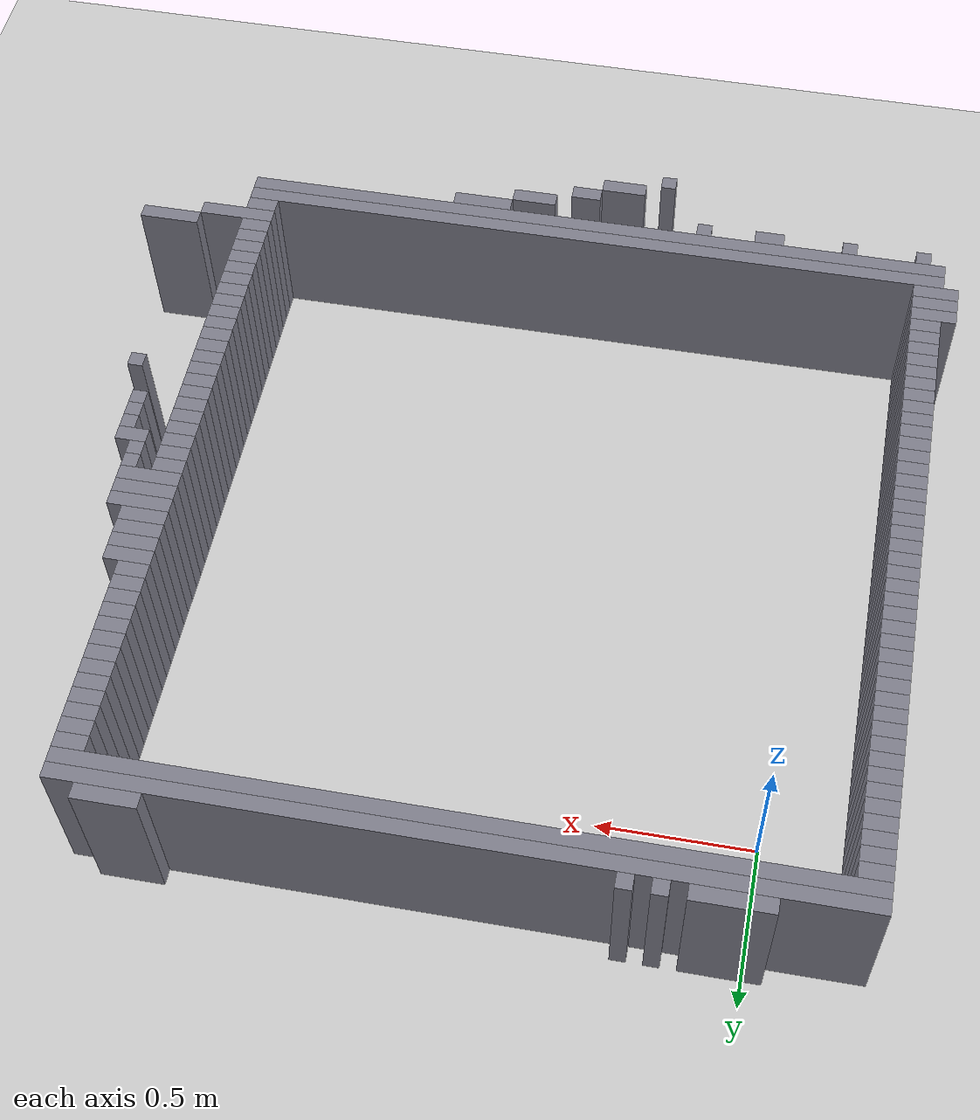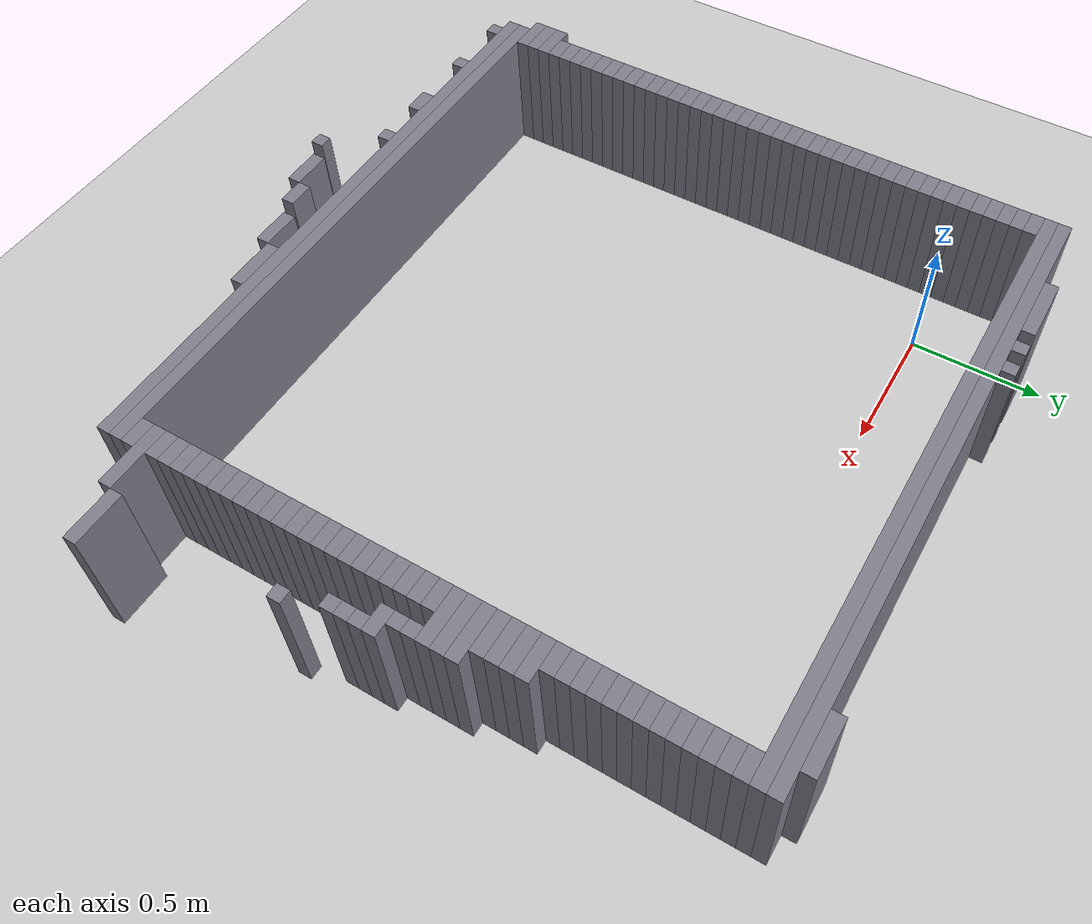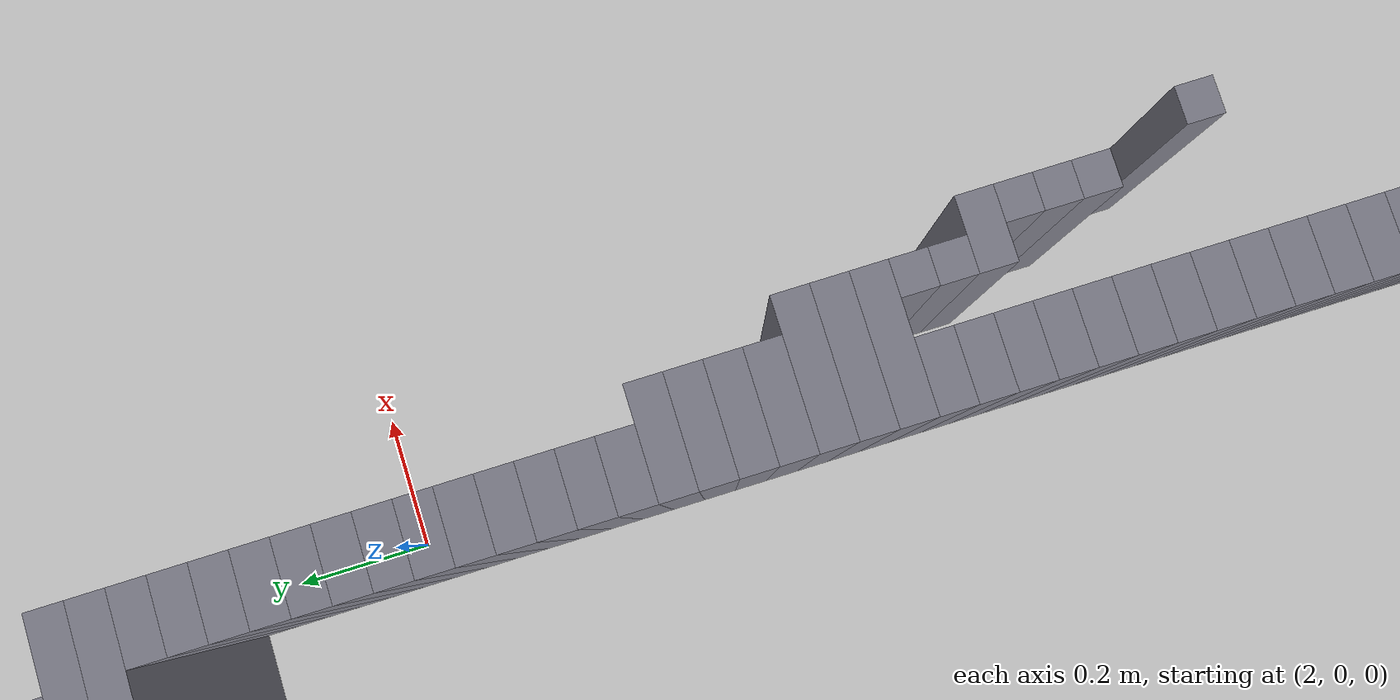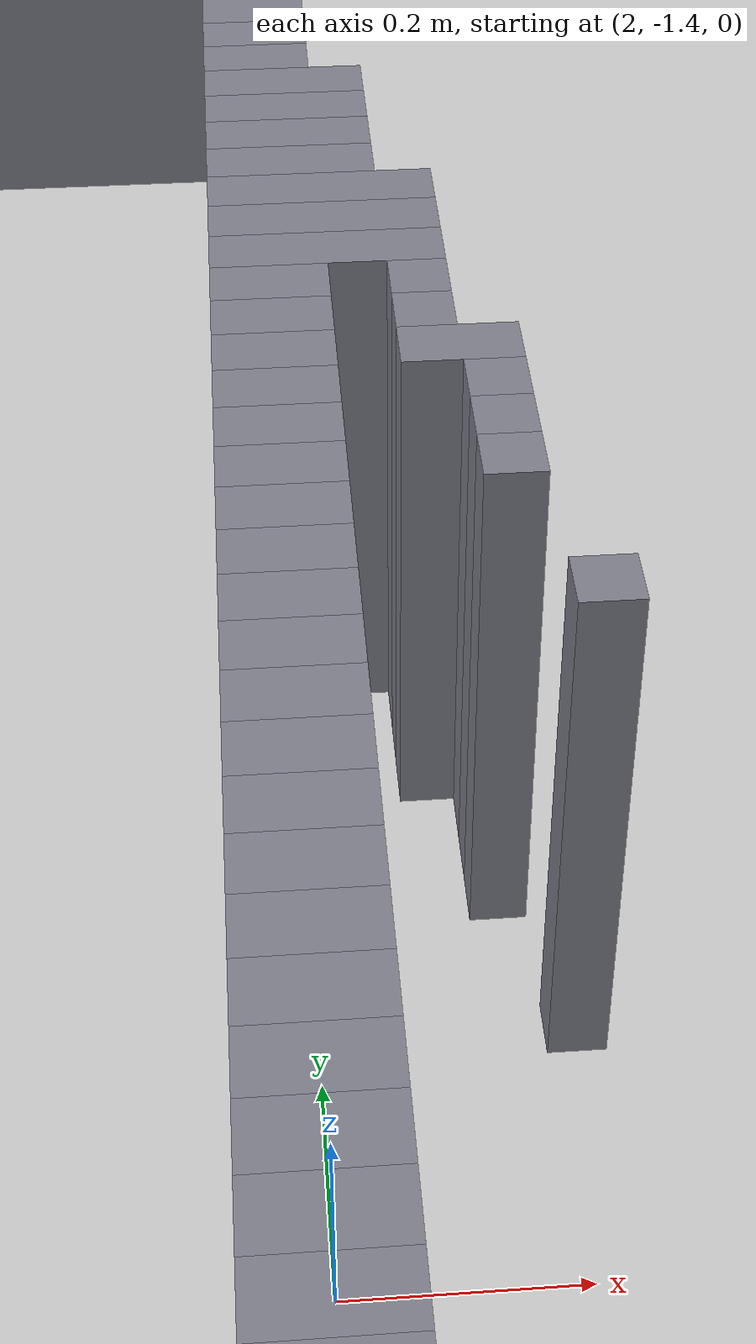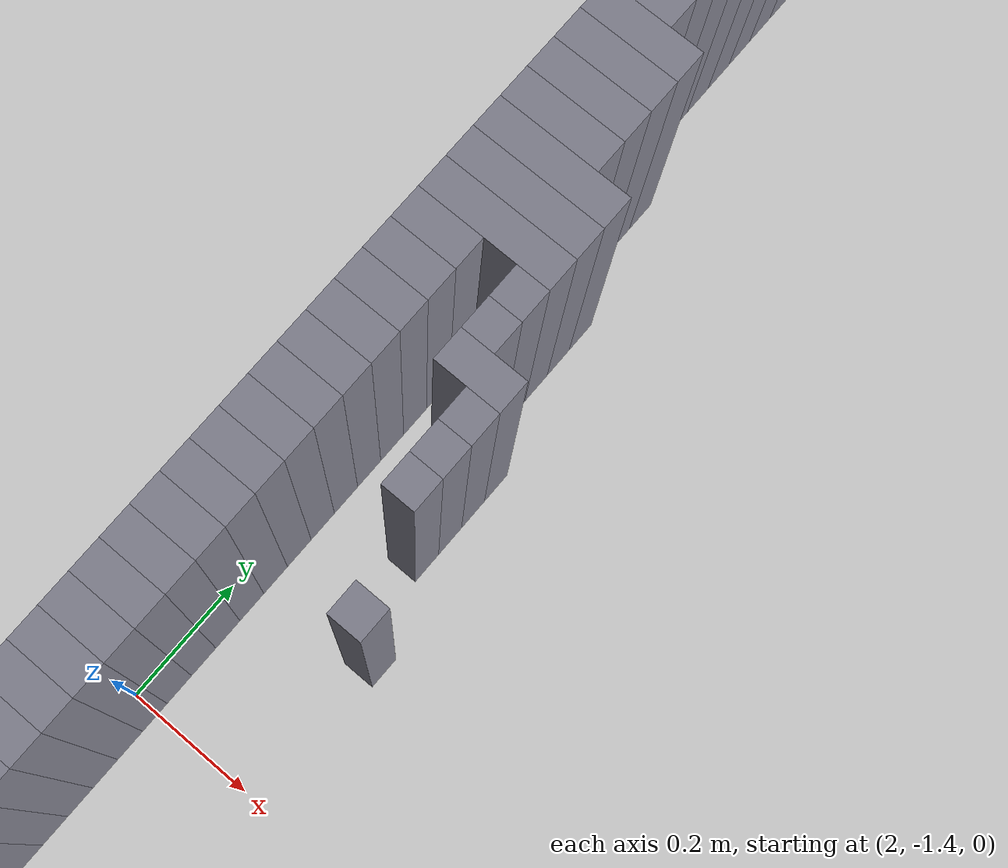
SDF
<?xml version="1.0"?>
<!-- Auto-generated from map.pgm by tools/map2world.py. Walls match the
     ROS map so Gazebo geometry == the map AMCL localizes against. -->
<sdf version="1.6">
  <world name="dart_room">
    <include><uri>model://ground_plane</uri></include>
    <include><uri>model://sun</uri></include>
    <physics type="ode">
      <max_step_size>0.001</max_step_size>
      <real_time_update_rate>1000</real_time_update_rate>
    </physics>
    <scene><ambient>0.4 0.4 0.4 1</ambient><background>0.7 0.7 0.7 1</background><shadows>false</shadows></scene>
    <model name="wall_0">
      <static>true</static>
      <pose>0.065 0.395 0.250 0 0 0</pose>
      <link name="link">
        <collision name="c"><geometry><box><size>0.250 0.050 0.500</size></box></geometry></collision>
        <visual name="v"><geometry><box><size>0.250 0.050 0.500</size></box></geometry>
          <material><ambient>0.5 0.5 0.55 1</ambient><diffuse>0.5 0.5 0.55 1</diffuse></material></visual>
      </link>
    </model>
    <model name="wall_1">
      <static>true</static>
      <pose>0.265 0.395 0.250 0 0 0</pose>
      <link name="link">
        <collision name="c"><geometry><box><size>0.050 0.050 0.500</size></box></geometry></collision>
        <visual name="v"><geometry><box><size>0.050 0.050 0.500</size></box></geometry>
          <material><ambient>0.5 0.5 0.55 1</ambient><diffuse>0.5 0.5 0.55 1</diffuse></material></visual>
      </link>
    </model>
    <model name="wall_2">
      <static>true</static>
      <pose>0.365 0.395 0.250 0 0 0</pose>
      <link name="link">
        <collision name="c"><geometry><box><size>0.050 0.050 0.500</size></box></geometry></collision>
        <visual name="v"><geometry><box><size>0.050 0.050 0.500</size></box></geometry>
          <material><ambient>0.5 0.5 0.55 1</ambient><diffuse>0.5 0.5 0.55 1</diffuse></material></visual>
      </link>
    </model>
    <model name="wall_3">
      <static>true</static>
      <pose>1.840 0.395 0.250 0 0 0</pose>
      <link name="link">
        <collision name="c"><geometry><box><size>0.200 0.050 0.500</size></box></geometry></collision>
        <visual name="v"><geometry><box><size>0.200 0.050 0.500</size></box></geometry>
          <material><ambient>0.5 0.5 0.55 1</ambient><diffuse>0.5 0.5 0.55 1</diffuse></material></visual>
      </link>
    </model>
    <model name="wall_4">
      <static>true</static>
      <pose>0.840 0.345 0.250 0 0 0</pose>
      <link name="link">
        <collision name="c"><geometry><box><size>2.400 0.050 0.500</size></box></geometry></collision>
        <visual name="v"><geometry><box><size>2.400 0.050 0.500</size></box></geometry>
          <material><ambient>0.5 0.5 0.55 1</ambient><diffuse>0.5 0.5 0.55 1</diffuse></material></visual>
      </link>
    </model>
    <model name="wall_5">
      <static>true</static>
      <pose>0.840 0.295 0.250 0 0 0</pose>
      <link name="link">
        <collision name="c"><geometry><box><size>2.400 0.050 0.500</size></box></geometry></collision>
        <visual name="v"><geometry><box><size>2.400 0.050 0.500</size></box></geometry>
          <material><ambient>0.5 0.5 0.55 1</ambient><diffuse>0.5 0.5 0.55 1</diffuse></material></visual>
      </link>
    </model>
    <model name="wall_6">
      <static>true</static>
      <pose>-0.310 0.245 0.250 0 0 0</pose>
      <link name="link">
        <collision name="c"><geometry><box><size>0.100 0.050 0.500</size></box></geometry></collision>
        <visual name="v"><geometry><box><size>0.100 0.050 0.500</size></box></geometry>
          <material><ambient>0.5 0.5 0.55 1</ambient><diffuse>0.5 0.5 0.55 1</diffuse></material></visual>
      </link>
    </model>
    <model name="wall_7">
      <static>true</static>
      <pose>1.990 0.245 0.250 0 0 0</pose>
      <link name="link">
        <collision name="c"><geometry><box><size>0.100 0.050 0.500</size></box></geometry></collision>
        <visual name="v"><geometry><box><size>0.100 0.050 0.500</size></box></geometry>
          <material><ambient>0.5 0.5 0.55 1</ambient><diffuse>0.5 0.5 0.55 1</diffuse></material></visual>
      </link>
    </model>
    <model name="wall_8">
      <static>true</static>
      <pose>-0.310 0.195 0.250 0 0 0</pose>
      <link name="link">
        <collision name="c"><geometry><box><size>0.100 0.050 0.500</size></box></geometry></collision>
        <visual name="v"><geometry><box><size>0.100 0.050 0.500</size></box></geometry>
          <material><ambient>0.5 0.5 0.55 1</ambient><diffuse>0.5 0.5 0.55 1</diffuse></material></visual>
      </link>
    </model>
    <model name="wall_9">
      <static>true</static>
      <pose>1.990 0.195 0.250 0 0 0</pose>
      <link name="link">
        <collision name="c"><geometry><box><size>0.100 0.050 0.500</size></box></geometry></collision>
        <visual name="v"><geometry><box><size>0.100 0.050 0.500</size></box></geometry>
          <material><ambient>0.5 0.5 0.55 1</ambient><diffuse>0.5 0.5 0.55 1</diffuse></material></visual>
      </link>
    </model>
    <model name="wall_10">
      <static>true</static>
      <pose>-0.310 0.145 0.250 0 0 0</pose>
      <link name="link">
        <collision name="c"><geometry><box><size>0.100 0.050 0.500</size></box></geometry></collision>
        <visual name="v"><geometry><box><size>0.100 0.050 0.500</size></box></geometry>
          <material><ambient>0.5 0.5 0.55 1</ambient><diffuse>0.5 0.5 0.55 1</diffuse></material></visual>
      </link>
    </model>
    <model name="wall_11">
      <static>true</static>
      <pose>1.990 0.145 0.250 0 0 0</pose>
      <link name="link">
        <collision name="c"><geometry><box><size>0.100 0.050 0.500</size></box></geometry></collision>
        <visual name="v"><geometry><box><size>0.100 0.050 0.500</size></box></geometry>
          <material><ambient>0.5 0.5 0.55 1</ambient><diffuse>0.5 0.5 0.55 1</diffuse></material></visual>
      </link>
    </model>
    <model name="wall_12">
      <static>true</static>
      <pose>-0.310 0.095 0.250 0 0 0</pose>
      <link name="link">
        <collision name="c"><geometry><box><size>0.100 0.050 0.500</size></box></geometry></collision>
        <visual name="v"><geometry><box><size>0.100 0.050 0.500</size></box></geometry>
          <material><ambient>0.5 0.5 0.55 1</ambient><diffuse>0.5 0.5 0.55 1</diffuse></material></visual>
      </link>
    </model>
    <model name="wall_13">
      <static>true</static>
      <pose>1.990 0.095 0.250 0 0 0</pose>
      <link name="link">
        <collision name="c"><geometry><box><size>0.100 0.050 0.500</size></box></geometry></collision>
        <visual name="v"><geometry><box><size>0.100 0.050 0.500</size></box></geometry>
          <material><ambient>0.5 0.5 0.55 1</ambient><diffuse>0.5 0.5 0.55 1</diffuse></material></visual>
      </link>
    </model>
    <model name="wall_14">
      <static>true</static>
      <pose>-0.310 0.045 0.250 0 0 0</pose>
      <link name="link">
        <collision name="c"><geometry><box><size>0.100 0.050 0.500</size></box></geometry></collision>
        <visual name="v"><geometry><box><size>0.100 0.050 0.500</size></box></geometry>
          <material><ambient>0.5 0.5 0.55 1</ambient><diffuse>0.5 0.5 0.55 1</diffuse></material></visual>
      </link>
    </model>
    <model name="wall_15">
      <static>true</static>
      <pose>1.990 0.045 0.250 0 0 0</pose>
      <link name="link">
        <collision name="c"><geometry><box><size>0.100 0.050 0.500</size></box></geometry></collision>
        <visual name="v"><geometry><box><size>0.100 0.050 0.500</size></box></geometry>
          <material><ambient>0.5 0.5 0.55 1</ambient><diffuse>0.5 0.5 0.55 1</diffuse></material></visual>
      </link>
    </model>
    <model name="wall_16">
      <static>true</static>
      <pose>-0.310 -0.005 0.250 0 0 0</pose>
      <link name="link">
        <collision name="c"><geometry><box><size>0.100 0.050 0.500</size></box></geometry></collision>
        <visual name="v"><geometry><box><size>0.100 0.050 0.500</size></box></geometry>
          <material><ambient>0.5 0.5 0.55 1</ambient><diffuse>0.5 0.5 0.55 1</diffuse></material></visual>
      </link>
    </model>
    <model name="wall_17">
      <static>true</static>
      <pose>1.990 -0.005 0.250 0 0 0</pose>
      <link name="link">
        <collision name="c"><geometry><box><size>0.100 0.050 0.500</size></box></geometry></collision>
        <visual name="v"><geometry><box><size>0.100 0.050 0.500</size></box></geometry>
          <material><ambient>0.5 0.5 0.55 1</ambient><diffuse>0.5 0.5 0.55 1</diffuse></material></visual>
      </link>
    </model>
    <model name="wall_18">
      <static>true</static>
      <pose>-0.310 -0.055 0.250 0 0 0</pose>
      <link name="link">
        <collision name="c"><geometry><box><size>0.100 0.050 0.500</size></box></geometry></collision>
        <visual name="v"><geometry><box><size>0.100 0.050 0.500</size></box></geometry>
          <material><ambient>0.5 0.5 0.55 1</ambient><diffuse>0.5 0.5 0.55 1</diffuse></material></visual>
      </link>
    </model>
    <model name="wall_19">
      <static>true</static>
      <pose>1.990 -0.055 0.250 0 0 0</pose>
      <link name="link">
        <collision name="c"><geometry><box><size>0.100 0.050 0.500</size></box></geometry></collision>
        <visual name="v"><geometry><box><size>0.100 0.050 0.500</size></box></geometry>
          <material><ambient>0.5 0.5 0.55 1</ambient><diffuse>0.5 0.5 0.55 1</diffuse></material></visual>
      </link>
    </model>
    <model name="wall_20">
      <static>true</static>
      <pose>-0.310 -0.105 0.250 0 0 0</pose>
      <link name="link">
        <collision name="c"><geometry><box><size>0.100 0.050 0.500</size></box></geometry></collision>
        <visual name="v"><geometry><box><size>0.100 0.050 0.500</size></box></geometry>
          <material><ambient>0.5 0.5 0.55 1</ambient><diffuse>0.5 0.5 0.55 1</diffuse></material></visual>
      </link>
    </model>
    <model name="wall_21">
      <static>true</static>
      <pose>1.990 -0.105 0.250 0 0 0</pose>
      <link name="link">
        <collision name="c"><geometry><box><size>0.100 0.050 0.500</size></box></geometry></collision>
        <visual name="v"><geometry><box><size>0.100 0.050 0.500</size></box></geometry>
          <material><ambient>0.5 0.5 0.55 1</ambient><diffuse>0.5 0.5 0.55 1</diffuse></material></visual>
      </link>
    </model>
    <model name="wall_22">
      <static>true</static>
      <pose>-0.310 -0.155 0.250 0 0 0</pose>
      <link name="link">
        <collision name="c"><geometry><box><size>0.100 0.050 0.500</size></box></geometry></collision>
        <visual name="v"><geometry><box><size>0.100 0.050 0.500</size></box></geometry>
          <material><ambient>0.5 0.5 0.55 1</ambient><diffuse>0.5 0.5 0.55 1</diffuse></material></visual>
      </link>
    </model>
    <model name="wall_23">
      <static>true</static>
      <pose>1.990 -0.155 0.250 0 0 0</pose>
      <link name="link">
        <collision name="c"><geometry><box><size>0.100 0.050 0.500</size></box></geometry></collision>
        <visual name="v"><geometry><box><size>0.100 0.050 0.500</size></box></geometry>
          <material><ambient>0.5 0.5 0.55 1</ambient><diffuse>0.5 0.5 0.55 1</diffuse></material></visual>
      </link>
    </model>
    <model name="wall_24">
      <static>true</static>
      <pose>-0.310 -0.205 0.250 0 0 0</pose>
      <link name="link">
        <collision name="c"><geometry><box><size>0.100 0.050 0.500</size></box></geometry></collision>
        <visual name="v"><geometry><box><size>0.100 0.050 0.500</size></box></geometry>
          <material><ambient>0.5 0.5 0.55 1</ambient><diffuse>0.5 0.5 0.55 1</diffuse></material></visual>
      </link>
    </model>
    <model name="wall_25">
      <static>true</static>
      <pose>1.990 -0.205 0.250 0 0 0</pose>
      <link name="link">
        <collision name="c"><geometry><box><size>0.100 0.050 0.500</size></box></geometry></collision>
        <visual name="v"><geometry><box><size>0.100 0.050 0.500</size></box></geometry>
          <material><ambient>0.5 0.5 0.55 1</ambient><diffuse>0.5 0.5 0.55 1</diffuse></material></visual>
      </link>
    </model>
    <model name="wall_26">
      <static>true</static>
      <pose>-0.310 -0.255 0.250 0 0 0</pose>
      <link name="link">
        <collision name="c"><geometry><box><size>0.100 0.050 0.500</size></box></geometry></collision>
        <visual name="v"><geometry><box><size>0.100 0.050 0.500</size></box></geometry>
          <material><ambient>0.5 0.5 0.55 1</ambient><diffuse>0.5 0.5 0.55 1</diffuse></material></visual>
      </link>
    </model>
    <model name="wall_27">
      <static>true</static>
      <pose>1.990 -0.255 0.250 0 0 0</pose>
      <link name="link">
        <collision name="c"><geometry><box><size>0.100 0.050 0.500</size></box></geometry></collision>
        <visual name="v"><geometry><box><size>0.100 0.050 0.500</size></box></geometry>
          <material><ambient>0.5 0.5 0.55 1</ambient><diffuse>0.5 0.5 0.55 1</diffuse></material></visual>
      </link>
    </model>
    <model name="wall_28">
      <static>true</static>
      <pose>-0.310 -0.305 0.250 0 0 0</pose>
      <link name="link">
        <collision name="c"><geometry><box><size>0.100 0.050 0.500</size></box></geometry></collision>
        <visual name="v"><geometry><box><size>0.100 0.050 0.500</size></box></geometry>
          <material><ambient>0.5 0.5 0.55 1</ambient><diffuse>0.5 0.5 0.55 1</diffuse></material></visual>
      </link>
    </model>
    <model name="wall_29">
      <static>true</static>
      <pose>1.990 -0.305 0.250 0 0 0</pose>
      <link name="link">
        <collision name="c"><geometry><box><size>0.100 0.050 0.500</size></box></geometry></collision>
        <visual name="v"><geometry><box><size>0.100 0.050 0.500</size></box></geometry>
          <material><ambient>0.5 0.5 0.55 1</ambient><diffuse>0.5 0.5 0.55 1</diffuse></material></visual>
      </link>
    </model>
    <model name="wall_30">
      <static>true</static>
      <pose>-0.310 -0.355 0.250 0 0 0</pose>
      <link name="link">
        <collision name="c"><geometry><box><size>0.100 0.050 0.500</size></box></geometry></collision>
        <visual name="v"><geometry><box><size>0.100 0.050 0.500</size></box></geometry>
          <material><ambient>0.5 0.5 0.55 1</ambient><diffuse>0.5 0.5 0.55 1</diffuse></material></visual>
      </link>
    </model>
    <model name="wall_31">
      <static>true</static>
      <pose>1.990 -0.355 0.250 0 0 0</pose>
      <link name="link">
        <collision name="c"><geometry><box><size>0.100 0.050 0.500</size></box></geometry></collision>
        <visual name="v"><geometry><box><size>0.100 0.050 0.500</size></box></geometry>
          <material><ambient>0.5 0.5 0.55 1</ambient><diffuse>0.5 0.5 0.55 1</diffuse></material></visual>
      </link>
    </model>
    <model name="wall_32">
      <static>true</static>
      <pose>-0.310 -0.405 0.250 0 0 0</pose>
      <link name="link">
        <collision name="c"><geometry><box><size>0.100 0.050 0.500</size></box></geometry></collision>
        <visual name="v"><geometry><box><size>0.100 0.050 0.500</size></box></geometry>
          <material><ambient>0.5 0.5 0.55 1</ambient><diffuse>0.5 0.5 0.55 1</diffuse></material></visual>
      </link>
    </model>
    <model name="wall_33">
      <static>true</static>
      <pose>2.015 -0.405 0.250 0 0 0</pose>
      <link name="link">
        <collision name="c"><geometry><box><size>0.150 0.050 0.500</size></box></geometry></collision>
        <visual name="v"><geometry><box><size>0.150 0.050 0.500</size></box></geometry>
          <material><ambient>0.5 0.5 0.55 1</ambient><diffuse>0.5 0.5 0.55 1</diffuse></material></visual>
      </link>
    </model>
    <model name="wall_34">
      <static>true</static>
      <pose>-0.310 -0.455 0.250 0 0 0</pose>
      <link name="link">
        <collision name="c"><geometry><box><size>0.100 0.050 0.500</size></box></geometry></collision>
        <visual name="v"><geometry><box><size>0.100 0.050 0.500</size></box></geometry>
          <material><ambient>0.5 0.5 0.55 1</ambient><diffuse>0.5 0.5 0.55 1</diffuse></material></visual>
      </link>
    </model>
    <model name="wall_35">
      <static>true</static>
      <pose>2.015 -0.455 0.250 0 0 0</pose>
      <link name="link">
        <collision name="c"><geometry><box><size>0.150 0.050 0.500</size></box></geometry></collision>
        <visual name="v"><geometry><box><size>0.150 0.050 0.500</size></box></geometry>
          <material><ambient>0.5 0.5 0.55 1</ambient><diffuse>0.5 0.5 0.55 1</diffuse></material></visual>
      </link>
    </model>
    <model name="wall_36">
      <static>true</static>
      <pose>-0.310 -0.505 0.250 0 0 0</pose>
      <link name="link">
        <collision name="c"><geometry><box><size>0.100 0.050 0.500</size></box></geometry></collision>
        <visual name="v"><geometry><box><size>0.100 0.050 0.500</size></box></geometry>
          <material><ambient>0.5 0.5 0.55 1</ambient><diffuse>0.5 0.5 0.55 1</diffuse></material></visual>
      </link>
    </model>
    <model name="wall_37">
      <static>true</static>
      <pose>2.015 -0.505 0.250 0 0 0</pose>
      <link name="link">
        <collision name="c"><geometry><box><size>0.150 0.050 0.500</size></box></geometry></collision>
        <visual name="v"><geometry><box><size>0.150 0.050 0.500</size></box></geometry>
          <material><ambient>0.5 0.5 0.55 1</ambient><diffuse>0.5 0.5 0.55 1</diffuse></material></visual>
      </link>
    </model>
    <model name="wall_38">
      <static>true</static>
      <pose>-0.310 -0.555 0.250 0 0 0</pose>
      <link name="link">
        <collision name="c"><geometry><box><size>0.100 0.050 0.500</size></box></geometry></collision>
        <visual name="v"><geometry><box><size>0.100 0.050 0.500</size></box></geometry>
          <material><ambient>0.5 0.5 0.55 1</ambient><diffuse>0.5 0.5 0.55 1</diffuse></material></visual>
      </link>
    </model>
    <model name="wall_39">
      <static>true</static>
      <pose>2.015 -0.555 0.250 0 0 0</pose>
      <link name="link">
        <collision name="c"><geometry><box><size>0.150 0.050 0.500</size></box></geometry></collision>
        <visual name="v"><geometry><box><size>0.150 0.050 0.500</size></box></geometry>
          <material><ambient>0.5 0.5 0.55 1</ambient><diffuse>0.5 0.5 0.55 1</diffuse></material></visual>
      </link>
    </model>
    <model name="wall_40">
      <static>true</static>
      <pose>-0.310 -0.605 0.250 0 0 0</pose>
      <link name="link">
        <collision name="c"><geometry><box><size>0.100 0.050 0.500</size></box></geometry></collision>
        <visual name="v"><geometry><box><size>0.100 0.050 0.500</size></box></geometry>
          <material><ambient>0.5 0.5 0.55 1</ambient><diffuse>0.5 0.5 0.55 1</diffuse></material></visual>
      </link>
    </model>
    <model name="wall_41">
      <static>true</static>
      <pose>2.040 -0.605 0.250 0 0 0</pose>
      <link name="link">
        <collision name="c"><geometry><box><size>0.200 0.050 0.500</size></box></geometry></collision>
        <visual name="v"><geometry><box><size>0.200 0.050 0.500</size></box></geometry>
          <material><ambient>0.5 0.5 0.55 1</ambient><diffuse>0.5 0.5 0.55 1</diffuse></material></visual>
      </link>
    </model>
    <model name="wall_42">
      <static>true</static>
      <pose>-0.310 -0.655 0.250 0 0 0</pose>
      <link name="link">
        <collision name="c"><geometry><box><size>0.100 0.050 0.500</size></box></geometry></collision>
        <visual name="v"><geometry><box><size>0.100 0.050 0.500</size></box></geometry>
          <material><ambient>0.5 0.5 0.55 1</ambient><diffuse>0.5 0.5 0.55 1</diffuse></material></visual>
      </link>
    </model>
    <model name="wall_43">
      <static>true</static>
      <pose>2.040 -0.655 0.250 0 0 0</pose>
      <link name="link">
        <collision name="c"><geometry><box><size>0.200 0.050 0.500</size></box></geometry></collision>
        <visual name="v"><geometry><box><size>0.200 0.050 0.500</size></box></geometry>
          <material><ambient>0.5 0.5 0.55 1</ambient><diffuse>0.5 0.5 0.55 1</diffuse></material></visual>
      </link>
    </model>
    <model name="wall_44">
      <static>true</static>
      <pose>-0.310 -0.705 0.250 0 0 0</pose>
      <link name="link">
        <collision name="c"><geometry><box><size>0.100 0.050 0.500</size></box></geometry></collision>
        <visual name="v"><geometry><box><size>0.100 0.050 0.500</size></box></geometry>
          <material><ambient>0.5 0.5 0.55 1</ambient><diffuse>0.5 0.5 0.55 1</diffuse></material></visual>
      </link>
    </model>
    <model name="wall_45">
      <static>true</static>
      <pose>2.040 -0.705 0.250 0 0 0</pose>
      <link name="link">
        <collision name="c"><geometry><box><size>0.200 0.050 0.500</size></box></geometry></collision>
        <visual name="v"><geometry><box><size>0.200 0.050 0.500</size></box></geometry>
          <material><ambient>0.5 0.5 0.55 1</ambient><diffuse>0.5 0.5 0.55 1</diffuse></material></visual>
      </link>
    </model>
    <model name="wall_46">
      <static>true</static>
      <pose>-0.310 -0.755 0.250 0 0 0</pose>
      <link name="link">
        <collision name="c"><geometry><box><size>0.100 0.050 0.500</size></box></geometry></collision>
        <visual name="v"><geometry><box><size>0.100 0.050 0.500</size></box></geometry>
          <material><ambient>0.5 0.5 0.55 1</ambient><diffuse>0.5 0.5 0.55 1</diffuse></material></visual>
      </link>
    </model>
    <model name="wall_47">
      <static>true</static>
      <pose>1.990 -0.755 0.250 0 0 0</pose>
      <link name="link">
        <collision name="c"><geometry><box><size>0.100 0.050 0.500</size></box></geometry></collision>
        <visual name="v"><geometry><box><size>0.100 0.050 0.500</size></box></geometry>
          <material><ambient>0.5 0.5 0.55 1</ambient><diffuse>0.5 0.5 0.55 1</diffuse></material></visual>
      </link>
    </model>
    <model name="wall_48">
      <static>true</static>
      <pose>2.115 -0.755 0.250 0 0 0</pose>
      <link name="link">
        <collision name="c"><geometry><box><size>0.050 0.050 0.500</size></box></geometry></collision>
        <visual name="v"><geometry><box><size>0.050 0.050 0.500</size></box></geometry>
          <material><ambient>0.5 0.5 0.55 1</ambient><diffuse>0.5 0.5 0.55 1</diffuse></material></visual>
      </link>
    </model>
    <model name="wall_49">
      <static>true</static>
      <pose>-0.310 -0.805 0.250 0 0 0</pose>
      <link name="link">
        <collision name="c"><geometry><box><size>0.100 0.050 0.500</size></box></geometry></collision>
        <visual name="v"><geometry><box><size>0.100 0.050 0.500</size></box></geometry>
          <material><ambient>0.5 0.5 0.55 1</ambient><diffuse>0.5 0.5 0.55 1</diffuse></material></visual>
      </link>
    </model>
    <model name="wall_50">
      <static>true</static>
      <pose>1.990 -0.805 0.250 0 0 0</pose>
      <link name="link">
        <collision name="c"><geometry><box><size>0.100 0.050 0.500</size></box></geometry></collision>
        <visual name="v"><geometry><box><size>0.100 0.050 0.500</size></box></geometry>
          <material><ambient>0.5 0.5 0.55 1</ambient><diffuse>0.5 0.5 0.55 1</diffuse></material></visual>
      </link>
    </model>
    <model name="wall_51">
      <static>true</static>
      <pose>2.115 -0.805 0.250 0 0 0</pose>
      <link name="link">
        <collision name="c"><geometry><box><size>0.050 0.050 0.500</size></box></geometry></collision>
        <visual name="v"><geometry><box><size>0.050 0.050 0.500</size></box></geometry>
          <material><ambient>0.5 0.5 0.55 1</ambient><diffuse>0.5 0.5 0.55 1</diffuse></material></visual>
      </link>
    </model>
    <model name="wall_52">
      <static>true</static>
      <pose>-0.310 -0.855 0.250 0 0 0</pose>
      <link name="link">
        <collision name="c"><geometry><box><size>0.100 0.050 0.500</size></box></geometry></collision>
        <visual name="v"><geometry><box><size>0.100 0.050 0.500</size></box></geometry>
          <material><ambient>0.5 0.5 0.55 1</ambient><diffuse>0.5 0.5 0.55 1</diffuse></material></visual>
      </link>
    </model>
    <model name="wall_53">
      <static>true</static>
      <pose>1.990 -0.855 0.250 0 0 0</pose>
      <link name="link">
        <collision name="c"><geometry><box><size>0.100 0.050 0.500</size></box></geometry></collision>
        <visual name="v"><geometry><box><size>0.100 0.050 0.500</size></box></geometry>
          <material><ambient>0.5 0.5 0.55 1</ambient><diffuse>0.5 0.5 0.55 1</diffuse></material></visual>
      </link>
    </model>
    <model name="wall_54">
      <static>true</static>
      <pose>2.140 -0.855 0.250 0 0 0</pose>
      <link name="link">
        <collision name="c"><geometry><box><size>0.100 0.050 0.500</size></box></geometry></collision>
        <visual name="v"><geometry><box><size>0.100 0.050 0.500</size></box></geometry>
          <material><ambient>0.5 0.5 0.55 1</ambient><diffuse>0.5 0.5 0.55 1</diffuse></material></visual>
      </link>
    </model>
    <model name="wall_55">
      <static>true</static>
      <pose>-0.310 -0.905 0.250 0 0 0</pose>
      <link name="link">
        <collision name="c"><geometry><box><size>0.100 0.050 0.500</size></box></geometry></collision>
        <visual name="v"><geometry><box><size>0.100 0.050 0.500</size></box></geometry>
          <material><ambient>0.5 0.5 0.55 1</ambient><diffuse>0.5 0.5 0.55 1</diffuse></material></visual>
      </link>
    </model>
    <model name="wall_56">
      <static>true</static>
      <pose>1.990 -0.905 0.250 0 0 0</pose>
      <link name="link">
        <collision name="c"><geometry><box><size>0.100 0.050 0.500</size></box></geometry></collision>
        <visual name="v"><geometry><box><size>0.100 0.050 0.500</size></box></geometry>
          <material><ambient>0.5 0.5 0.55 1</ambient><diffuse>0.5 0.5 0.55 1</diffuse></material></visual>
      </link>
    </model>
    <model name="wall_57">
      <static>true</static>
      <pose>2.165 -0.905 0.250 0 0 0</pose>
      <link name="link">
        <collision name="c"><geometry><box><size>0.050 0.050 0.500</size></box></geometry></collision>
        <visual name="v"><geometry><box><size>0.050 0.050 0.500</size></box></geometry>
          <material><ambient>0.5 0.5 0.55 1</ambient><diffuse>0.5 0.5 0.55 1</diffuse></material></visual>
      </link>
    </model>
    <model name="wall_58">
      <static>true</static>
      <pose>-0.310 -0.955 0.250 0 0 0</pose>
      <link name="link">
        <collision name="c"><geometry><box><size>0.100 0.050 0.500</size></box></geometry></collision>
        <visual name="v"><geometry><box><size>0.100 0.050 0.500</size></box></geometry>
          <material><ambient>0.5 0.5 0.55 1</ambient><diffuse>0.5 0.5 0.55 1</diffuse></material></visual>
      </link>
    </model>
    <model name="wall_59">
      <static>true</static>
      <pose>1.990 -0.955 0.250 0 0 0</pose>
      <link name="link">
        <collision name="c"><geometry><box><size>0.100 0.050 0.500</size></box></geometry></collision>
        <visual name="v"><geometry><box><size>0.100 0.050 0.500</size></box></geometry>
          <material><ambient>0.5 0.5 0.55 1</ambient><diffuse>0.5 0.5 0.55 1</diffuse></material></visual>
      </link>
    </model>
    <model name="wall_60">
      <static>true</static>
      <pose>2.165 -0.955 0.250 0 0 0</pose>
      <link name="link">
        <collision name="c"><geometry><box><size>0.050 0.050 0.500</size></box></geometry></collision>
        <visual name="v"><geometry><box><size>0.050 0.050 0.500</size></box></geometry>
          <material><ambient>0.5 0.5 0.55 1</ambient><diffuse>0.5 0.5 0.55 1</diffuse></material></visual>
      </link>
    </model>
    <model name="wall_61">
      <static>true</static>
      <pose>-0.310 -1.005 0.250 0 0 0</pose>
      <link name="link">
        <collision name="c"><geometry><box><size>0.100 0.050 0.500</size></box></geometry></collision>
        <visual name="v"><geometry><box><size>0.100 0.050 0.500</size></box></geometry>
          <material><ambient>0.5 0.5 0.55 1</ambient><diffuse>0.5 0.5 0.55 1</diffuse></material></visual>
      </link>
    </model>
    <model name="wall_62">
      <static>true</static>
      <pose>1.990 -1.005 0.250 0 0 0</pose>
      <link name="link">
        <collision name="c"><geometry><box><size>0.100 0.050 0.500</size></box></geometry></collision>
        <visual name="v"><geometry><box><size>0.100 0.050 0.500</size></box></geometry>
          <material><ambient>0.5 0.5 0.55 1</ambient><diffuse>0.5 0.5 0.55 1</diffuse></material></visual>
      </link>
    </model>
    <model name="wall_63">
      <static>true</static>
      <pose>2.165 -1.005 0.250 0 0 0</pose>
      <link name="link">
        <collision name="c"><geometry><box><size>0.050 0.050 0.500</size></box></geometry></collision>
        <visual name="v"><geometry><box><size>0.050 0.050 0.500</size></box></geometry>
          <material><ambient>0.5 0.5 0.55 1</ambient><diffuse>0.5 0.5 0.55 1</diffuse></material></visual>
      </link>
    </model>
    <model name="wall_64">
      <static>true</static>
      <pose>-0.310 -1.055 0.250 0 0 0</pose>
      <link name="link">
        <collision name="c"><geometry><box><size>0.100 0.050 0.500</size></box></geometry></collision>
        <visual name="v"><geometry><box><size>0.100 0.050 0.500</size></box></geometry>
          <material><ambient>0.5 0.5 0.55 1</ambient><diffuse>0.5 0.5 0.55 1</diffuse></material></visual>
      </link>
    </model>
    <model name="wall_65">
      <static>true</static>
      <pose>1.990 -1.055 0.250 0 0 0</pose>
      <link name="link">
        <collision name="c"><geometry><box><size>0.100 0.050 0.500</size></box></geometry></collision>
        <visual name="v"><geometry><box><size>0.100 0.050 0.500</size></box></geometry>
          <material><ambient>0.5 0.5 0.55 1</ambient><diffuse>0.5 0.5 0.55 1</diffuse></material></visual>
      </link>
    </model>
    <model name="wall_66">
      <static>true</static>
      <pose>-0.310 -1.105 0.250 0 0 0</pose>
      <link name="link">
        <collision name="c"><geometry><box><size>0.100 0.050 0.500</size></box></geometry></collision>
        <visual name="v"><geometry><box><size>0.100 0.050 0.500</size></box></geometry>
          <material><ambient>0.5 0.5 0.55 1</ambient><diffuse>0.5 0.5 0.55 1</diffuse></material></visual>
      </link>
    </model>
    <model name="wall_67">
      <static>true</static>
      <pose>1.990 -1.105 0.250 0 0 0</pose>
      <link name="link">
        <collision name="c"><geometry><box><size>0.100 0.050 0.500</size></box></geometry></collision>
        <visual name="v"><geometry><box><size>0.100 0.050 0.500</size></box></geometry>
          <material><ambient>0.5 0.5 0.55 1</ambient><diffuse>0.5 0.5 0.55 1</diffuse></material></visual>
      </link>
    </model>
    <model name="wall_68">
      <static>true</static>
      <pose>-0.310 -1.155 0.250 0 0 0</pose>
      <link name="link">
        <collision name="c"><geometry><box><size>0.100 0.050 0.500</size></box></geometry></collision>
        <visual name="v"><geometry><box><size>0.100 0.050 0.500</size></box></geometry>
          <material><ambient>0.5 0.5 0.55 1</ambient><diffuse>0.5 0.5 0.55 1</diffuse></material></visual>
      </link>
    </model>
    <model name="wall_69">
      <static>true</static>
      <pose>1.990 -1.155 0.250 0 0 0</pose>
      <link name="link">
        <collision name="c"><geometry><box><size>0.100 0.050 0.500</size></box></geometry></collision>
        <visual name="v"><geometry><box><size>0.100 0.050 0.500</size></box></geometry>
          <material><ambient>0.5 0.5 0.55 1</ambient><diffuse>0.5 0.5 0.55 1</diffuse></material></visual>
      </link>
    </model>
    <model name="wall_70">
      <static>true</static>
      <pose>2.215 -1.155 0.250 0 0 0</pose>
      <link name="link">
        <collision name="c"><geometry><box><size>0.050 0.050 0.500</size></box></geometry></collision>
        <visual name="v"><geometry><box><size>0.050 0.050 0.500</size></box></geometry>
          <material><ambient>0.5 0.5 0.55 1</ambient><diffuse>0.5 0.5 0.55 1</diffuse></material></visual>
      </link>
    </model>
    <model name="wall_71">
      <static>true</static>
      <pose>-0.310 -1.205 0.250 0 0 0</pose>
      <link name="link">
        <collision name="c"><geometry><box><size>0.100 0.050 0.500</size></box></geometry></collision>
        <visual name="v"><geometry><box><size>0.100 0.050 0.500</size></box></geometry>
          <material><ambient>0.5 0.5 0.55 1</ambient><diffuse>0.5 0.5 0.55 1</diffuse></material></visual>
      </link>
    </model>
    <model name="wall_72">
      <static>true</static>
      <pose>1.990 -1.205 0.250 0 0 0</pose>
      <link name="link">
        <collision name="c"><geometry><box><size>0.100 0.050 0.500</size></box></geometry></collision>
        <visual name="v"><geometry><box><size>0.100 0.050 0.500</size></box></geometry>
          <material><ambient>0.5 0.5 0.55 1</ambient><diffuse>0.5 0.5 0.55 1</diffuse></material></visual>
      </link>
    </model>
    <model name="wall_73">
      <static>true</static>
      <pose>-0.310 -1.255 0.250 0 0 0</pose>
      <link name="link">
        <collision name="c"><geometry><box><size>0.100 0.050 0.500</size></box></geometry></collision>
        <visual name="v"><geometry><box><size>0.100 0.050 0.500</size></box></geometry>
          <material><ambient>0.5 0.5 0.55 1</ambient><diffuse>0.5 0.5 0.55 1</diffuse></material></visual>
      </link>
    </model>
    <model name="wall_74">
      <static>true</static>
      <pose>1.990 -1.255 0.250 0 0 0</pose>
      <link name="link">
        <collision name="c"><geometry><box><size>0.100 0.050 0.500</size></box></geometry></collision>
        <visual name="v"><geometry><box><size>0.100 0.050 0.500</size></box></geometry>
          <material><ambient>0.5 0.5 0.55 1</ambient><diffuse>0.5 0.5 0.55 1</diffuse></material></visual>
      </link>
    </model>
    <model name="wall_75">
      <static>true</static>
      <pose>-0.310 -1.305 0.250 0 0 0</pose>
      <link name="link">
        <collision name="c"><geometry><box><size>0.100 0.050 0.500</size></box></geometry></collision>
        <visual name="v"><geometry><box><size>0.100 0.050 0.500</size></box></geometry>
          <material><ambient>0.5 0.5 0.55 1</ambient><diffuse>0.5 0.5 0.55 1</diffuse></material></visual>
      </link>
    </model>
    <model name="wall_76">
      <static>true</static>
      <pose>1.990 -1.305 0.250 0 0 0</pose>
      <link name="link">
        <collision name="c"><geometry><box><size>0.100 0.050 0.500</size></box></geometry></collision>
        <visual name="v"><geometry><box><size>0.100 0.050 0.500</size></box></geometry>
          <material><ambient>0.5 0.5 0.55 1</ambient><diffuse>0.5 0.5 0.55 1</diffuse></material></visual>
      </link>
    </model>
    <model name="wall_77">
      <static>true</static>
      <pose>-0.310 -1.355 0.250 0 0 0</pose>
      <link name="link">
        <collision name="c"><geometry><box><size>0.100 0.050 0.500</size></box></geometry></collision>
        <visual name="v"><geometry><box><size>0.100 0.050 0.500</size></box></geometry>
          <material><ambient>0.5 0.5 0.55 1</ambient><diffuse>0.5 0.5 0.55 1</diffuse></material></visual>
      </link>
    </model>
    <model name="wall_78">
      <static>true</static>
      <pose>1.990 -1.355 0.250 0 0 0</pose>
      <link name="link">
        <collision name="c"><geometry><box><size>0.100 0.050 0.500</size></box></geometry></collision>
        <visual name="v"><geometry><box><size>0.100 0.050 0.500</size></box></geometry>
          <material><ambient>0.5 0.5 0.55 1</ambient><diffuse>0.5 0.5 0.55 1</diffuse></material></visual>
      </link>
    </model>
    <model name="wall_79">
      <static>true</static>
      <pose>-0.310 -1.405 0.250 0 0 0</pose>
      <link name="link">
        <collision name="c"><geometry><box><size>0.100 0.050 0.500</size></box></geometry></collision>
        <visual name="v"><geometry><box><size>0.100 0.050 0.500</size></box></geometry>
          <material><ambient>0.5 0.5 0.55 1</ambient><diffuse>0.5 0.5 0.55 1</diffuse></material></visual>
      </link>
    </model>
    <model name="wall_80">
      <static>true</static>
      <pose>1.990 -1.405 0.250 0 0 0</pose>
      <link name="link">
        <collision name="c"><geometry><box><size>0.100 0.050 0.500</size></box></geometry></collision>
        <visual name="v"><geometry><box><size>0.100 0.050 0.500</size></box></geometry>
          <material><ambient>0.5 0.5 0.55 1</ambient><diffuse>0.5 0.5 0.55 1</diffuse></material></visual>
      </link>
    </model>
    <model name="wall_81">
      <static>true</static>
      <pose>-0.310 -1.455 0.250 0 0 0</pose>
      <link name="link">
        <collision name="c"><geometry><box><size>0.100 0.050 0.500</size></box></geometry></collision>
        <visual name="v"><geometry><box><size>0.100 0.050 0.500</size></box></geometry>
          <material><ambient>0.5 0.5 0.55 1</ambient><diffuse>0.5 0.5 0.55 1</diffuse></material></visual>
      </link>
    </model>
    <model name="wall_82">
      <static>true</static>
      <pose>1.990 -1.455 0.250 0 0 0</pose>
      <link name="link">
        <collision name="c"><geometry><box><size>0.100 0.050 0.500</size></box></geometry></collision>
        <visual name="v"><geometry><box><size>0.100 0.050 0.500</size></box></geometry>
          <material><ambient>0.5 0.5 0.55 1</ambient><diffuse>0.5 0.5 0.55 1</diffuse></material></visual>
      </link>
    </model>
    <model name="wall_83">
      <static>true</static>
      <pose>-0.310 -1.505 0.250 0 0 0</pose>
      <link name="link">
        <collision name="c"><geometry><box><size>0.100 0.050 0.500</size></box></geometry></collision>
        <visual name="v"><geometry><box><size>0.100 0.050 0.500</size></box></geometry>
          <material><ambient>0.5 0.5 0.55 1</ambient><diffuse>0.5 0.5 0.55 1</diffuse></material></visual>
      </link>
    </model>
    <model name="wall_84">
      <static>true</static>
      <pose>1.990 -1.505 0.250 0 0 0</pose>
      <link name="link">
        <collision name="c"><geometry><box><size>0.100 0.050 0.500</size></box></geometry></collision>
        <visual name="v"><geometry><box><size>0.100 0.050 0.500</size></box></geometry>
          <material><ambient>0.5 0.5 0.55 1</ambient><diffuse>0.5 0.5 0.55 1</diffuse></material></visual>
      </link>
    </model>
    <model name="wall_85">
      <static>true</static>
      <pose>-0.310 -1.555 0.250 0 0 0</pose>
      <link name="link">
        <collision name="c"><geometry><box><size>0.100 0.050 0.500</size></box></geometry></collision>
        <visual name="v"><geometry><box><size>0.100 0.050 0.500</size></box></geometry>
          <material><ambient>0.5 0.5 0.55 1</ambient><diffuse>0.5 0.5 0.55 1</diffuse></material></visual>
      </link>
    </model>
    <model name="wall_86">
      <static>true</static>
      <pose>1.990 -1.555 0.250 0 0 0</pose>
      <link name="link">
        <collision name="c"><geometry><box><size>0.100 0.050 0.500</size></box></geometry></collision>
        <visual name="v"><geometry><box><size>0.100 0.050 0.500</size></box></geometry>
          <material><ambient>0.5 0.5 0.55 1</ambient><diffuse>0.5 0.5 0.55 1</diffuse></material></visual>
      </link>
    </model>
    <model name="wall_87">
      <static>true</static>
      <pose>-0.310 -1.605 0.250 0 0 0</pose>
      <link name="link">
        <collision name="c"><geometry><box><size>0.100 0.050 0.500</size></box></geometry></collision>
        <visual name="v"><geometry><box><size>0.100 0.050 0.500</size></box></geometry>
          <material><ambient>0.5 0.5 0.55 1</ambient><diffuse>0.5 0.5 0.55 1</diffuse></material></visual>
      </link>
    </model>
    <model name="wall_88">
      <static>true</static>
      <pose>1.990 -1.605 0.250 0 0 0</pose>
      <link name="link">
        <collision name="c"><geometry><box><size>0.100 0.050 0.500</size></box></geometry></collision>
        <visual name="v"><geometry><box><size>0.100 0.050 0.500</size></box></geometry>
          <material><ambient>0.5 0.5 0.55 1</ambient><diffuse>0.5 0.5 0.55 1</diffuse></material></visual>
      </link>
    </model>
    <model name="wall_89">
      <static>true</static>
      <pose>-0.310 -1.655 0.250 0 0 0</pose>
      <link name="link">
        <collision name="c"><geometry><box><size>0.100 0.050 0.500</size></box></geometry></collision>
        <visual name="v"><geometry><box><size>0.100 0.050 0.500</size></box></geometry>
          <material><ambient>0.5 0.5 0.55 1</ambient><diffuse>0.5 0.5 0.55 1</diffuse></material></visual>
      </link>
    </model>
    <model name="wall_90">
      <static>true</static>
      <pose>1.990 -1.655 0.250 0 0 0</pose>
      <link name="link">
        <collision name="c"><geometry><box><size>0.100 0.050 0.500</size></box></geometry></collision>
        <visual name="v"><geometry><box><size>0.100 0.050 0.500</size></box></geometry>
          <material><ambient>0.5 0.5 0.55 1</ambient><diffuse>0.5 0.5 0.55 1</diffuse></material></visual>
      </link>
    </model>
    <model name="wall_91">
      <static>true</static>
      <pose>-0.310 -1.705 0.250 0 0 0</pose>
      <link name="link">
        <collision name="c"><geometry><box><size>0.100 0.050 0.500</size></box></geometry></collision>
        <visual name="v"><geometry><box><size>0.100 0.050 0.500</size></box></geometry>
          <material><ambient>0.5 0.5 0.55 1</ambient><diffuse>0.5 0.5 0.55 1</diffuse></material></visual>
      </link>
    </model>
    <model name="wall_92">
      <static>true</static>
      <pose>1.990 -1.705 0.250 0 0 0</pose>
      <link name="link">
        <collision name="c"><geometry><box><size>0.100 0.050 0.500</size></box></geometry></collision>
        <visual name="v"><geometry><box><size>0.100 0.050 0.500</size></box></geometry>
          <material><ambient>0.5 0.5 0.55 1</ambient><diffuse>0.5 0.5 0.55 1</diffuse></material></visual>
      </link>
    </model>
    <model name="wall_93">
      <static>true</static>
      <pose>-0.310 -1.755 0.250 0 0 0</pose>
      <link name="link">
        <collision name="c"><geometry><box><size>0.100 0.050 0.500</size></box></geometry></collision>
        <visual name="v"><geometry><box><size>0.100 0.050 0.500</size></box></geometry>
          <material><ambient>0.5 0.5 0.55 1</ambient><diffuse>0.5 0.5 0.55 1</diffuse></material></visual>
      </link>
    </model>
    <model name="wall_94">
      <static>true</static>
      <pose>1.990 -1.755 0.250 0 0 0</pose>
      <link name="link">
        <collision name="c"><geometry><box><size>0.100 0.050 0.500</size></box></geometry></collision>
        <visual name="v"><geometry><box><size>0.100 0.050 0.500</size></box></geometry>
          <material><ambient>0.5 0.5 0.55 1</ambient><diffuse>0.5 0.5 0.55 1</diffuse></material></visual>
      </link>
    </model>
    <model name="wall_95">
      <static>true</static>
      <pose>-0.335 -1.805 0.250 0 0 0</pose>
      <link name="link">
        <collision name="c"><geometry><box><size>0.150 0.050 0.500</size></box></geometry></collision>
        <visual name="v"><geometry><box><size>0.150 0.050 0.500</size></box></geometry>
          <material><ambient>0.5 0.5 0.55 1</ambient><diffuse>0.5 0.5 0.55 1</diffuse></material></visual>
      </link>
    </model>
    <model name="wall_96">
      <static>true</static>
      <pose>1.990 -1.805 0.250 0 0 0</pose>
      <link name="link">
        <collision name="c"><geometry><box><size>0.100 0.050 0.500</size></box></geometry></collision>
        <visual name="v"><geometry><box><size>0.100 0.050 0.500</size></box></geometry>
          <material><ambient>0.5 0.5 0.55 1</ambient><diffuse>0.5 0.5 0.55 1</diffuse></material></visual>
      </link>
    </model>
    <model name="wall_97">
      <static>true</static>
      <pose>2.290 -1.805 0.250 0 0 0</pose>
      <link name="link">
        <collision name="c"><geometry><box><size>0.200 0.050 0.500</size></box></geometry></collision>
        <visual name="v"><geometry><box><size>0.200 0.050 0.500</size></box></geometry>
          <material><ambient>0.5 0.5 0.55 1</ambient><diffuse>0.5 0.5 0.55 1</diffuse></material></visual>
      </link>
    </model>
    <model name="wall_98">
      <static>true</static>
      <pose>-0.335 -1.855 0.250 0 0 0</pose>
      <link name="link">
        <collision name="c"><geometry><box><size>0.150 0.050 0.500</size></box></geometry></collision>
        <visual name="v"><geometry><box><size>0.150 0.050 0.500</size></box></geometry>
          <material><ambient>0.5 0.5 0.55 1</ambient><diffuse>0.5 0.5 0.55 1</diffuse></material></visual>
      </link>
    </model>
    <model name="wall_99">
      <static>true</static>
      <pose>2.065 -1.855 0.250 0 0 0</pose>
      <link name="link">
        <collision name="c"><geometry><box><size>0.250 0.050 0.500</size></box></geometry></collision>
        <visual name="v"><geometry><box><size>0.250 0.050 0.500</size></box></geometry>
          <material><ambient>0.5 0.5 0.55 1</ambient><diffuse>0.5 0.5 0.55 1</diffuse></material></visual>
      </link>
    </model>
    <model name="wall_100">
      <static>true</static>
      <pose>-0.335 -1.905 0.250 0 0 0</pose>
      <link name="link">
        <collision name="c"><geometry><box><size>0.150 0.050 0.500</size></box></geometry></collision>
        <visual name="v"><geometry><box><size>0.150 0.050 0.500</size></box></geometry>
          <material><ambient>0.5 0.5 0.55 1</ambient><diffuse>0.5 0.5 0.55 1</diffuse></material></visual>
      </link>
    </model>
    <model name="wall_101">
      <static>true</static>
      <pose>1.990 -1.905 0.250 0 0 0</pose>
      <link name="link">
        <collision name="c"><geometry><box><size>0.100 0.050 0.500</size></box></geometry></collision>
        <visual name="v"><geometry><box><size>0.100 0.050 0.500</size></box></geometry>
          <material><ambient>0.5 0.5 0.55 1</ambient><diffuse>0.5 0.5 0.55 1</diffuse></material></visual>
      </link>
    </model>
    <model name="wall_102">
      <static>true</static>
      <pose>0.840 -1.955 0.250 0 0 0</pose>
      <link name="link">
        <collision name="c"><geometry><box><size>2.400 0.050 0.500</size></box></geometry></collision>
        <visual name="v"><geometry><box><size>2.400 0.050 0.500</size></box></geometry>
          <material><ambient>0.5 0.5 0.55 1</ambient><diffuse>0.5 0.5 0.55 1</diffuse></material></visual>
      </link>
    </model>
    <model name="wall_103">
      <static>true</static>
      <pose>0.840 -2.005 0.250 0 0 0</pose>
      <link name="link">
        <collision name="c"><geometry><box><size>2.400 0.050 0.500</size></box></geometry></collision>
        <visual name="v"><geometry><box><size>2.400 0.050 0.500</size></box></geometry>
          <material><ambient>0.5 0.5 0.55 1</ambient><diffuse>0.5 0.5 0.55 1</diffuse></material></visual>
      </link>
    </model>
    <model name="wall_104">
      <static>true</static>
      <pose>-0.285 -2.055 0.250 0 0 0</pose>
      <link name="link">
        <collision name="c"><geometry><box><size>0.050 0.050 0.500</size></box></geometry></collision>
        <visual name="v"><geometry><box><size>0.050 0.050 0.500</size></box></geometry>
          <material><ambient>0.5 0.5 0.55 1</ambient><diffuse>0.5 0.5 0.55 1</diffuse></material></visual>
      </link>
    </model>
    <model name="wall_105">
      <static>true</static>
      <pose>-0.035 -2.055 0.250 0 0 0</pose>
      <link name="link">
        <collision name="c"><geometry><box><size>0.050 0.050 0.500</size></box></geometry></collision>
        <visual name="v"><geometry><box><size>0.050 0.050 0.500</size></box></geometry>
          <material><ambient>0.5 0.5 0.55 1</ambient><diffuse>0.5 0.5 0.55 1</diffuse></material></visual>
      </link>
    </model>
    <model name="wall_106">
      <static>true</static>
      <pose>0.240 -2.055 0.250 0 0 0</pose>
      <link name="link">
        <collision name="c"><geometry><box><size>0.100 0.050 0.500</size></box></geometry></collision>
        <visual name="v"><geometry><box><size>0.100 0.050 0.500</size></box></geometry>
          <material><ambient>0.5 0.5 0.55 1</ambient><diffuse>0.5 0.5 0.55 1</diffuse></material></visual>
      </link>
    </model>
    <model name="wall_107">
      <static>true</static>
      <pose>0.465 -2.055 0.250 0 0 0</pose>
      <link name="link">
        <collision name="c"><geometry><box><size>0.050 0.050 0.500</size></box></geometry></collision>
        <visual name="v"><geometry><box><size>0.050 0.050 0.500</size></box></geometry>
          <material><ambient>0.5 0.5 0.55 1</ambient><diffuse>0.5 0.5 0.55 1</diffuse></material></visual>
      </link>
    </model>
    <model name="wall_108">
      <static>true</static>
      <pose>1.240 -2.055 0.250 0 0 0</pose>
      <link name="link">
        <collision name="c"><geometry><box><size>0.200 0.050 0.500</size></box></geometry></collision>
        <visual name="v"><geometry><box><size>0.200 0.050 0.500</size></box></geometry>
          <material><ambient>0.5 0.5 0.55 1</ambient><diffuse>0.5 0.5 0.55 1</diffuse></material></visual>
      </link>
    </model>
    <model name="wall_109">
      <static>true</static>
      <pose>1.065 -2.105 0.250 0 0 0</pose>
      <link name="link">
        <collision name="c"><geometry><box><size>0.150 0.050 0.500</size></box></geometry></collision>
        <visual name="v"><geometry><box><size>0.150 0.050 0.500</size></box></geometry>
          <material><ambient>0.5 0.5 0.55 1</ambient><diffuse>0.5 0.5 0.55 1</diffuse></material></visual>
      </link>
    </model>
    <model name="wall_110">
      <static>true</static>
      <pose>0.890 -2.155 0.250 0 0 0</pose>
      <link name="link">
        <collision name="c"><geometry><box><size>0.100 0.050 0.500</size></box></geometry></collision>
        <visual name="v"><geometry><box><size>0.100 0.050 0.500</size></box></geometry>
          <material><ambient>0.5 0.5 0.55 1</ambient><diffuse>0.5 0.5 0.55 1</diffuse></material></visual>
      </link>
    </model>
    <model name="wall_111">
      <static>true</static>
      <pose>0.765 -2.205 0.250 0 0 0</pose>
      <link name="link">
        <collision name="c"><geometry><box><size>0.150 0.050 0.500</size></box></geometry></collision>
        <visual name="v"><geometry><box><size>0.150 0.050 0.500</size></box></geometry>
          <material><ambient>0.5 0.5 0.55 1</ambient><diffuse>0.5 0.5 0.55 1</diffuse></material></visual>
      </link>
    </model>
    <model name="wall_112">
      <static>true</static>
      <pose>0.615 -2.255 0.250 0 0 0</pose>
      <link name="link">
        <collision name="c"><geometry><box><size>0.050 0.050 0.500</size></box></geometry></collision>
        <visual name="v"><geometry><box><size>0.050 0.050 0.500</size></box></geometry>
          <material><ambient>0.5 0.5 0.55 1</ambient><diffuse>0.5 0.5 0.55 1</diffuse></material></visual>
      </link>
    </model>
  </world>
</sdf>
